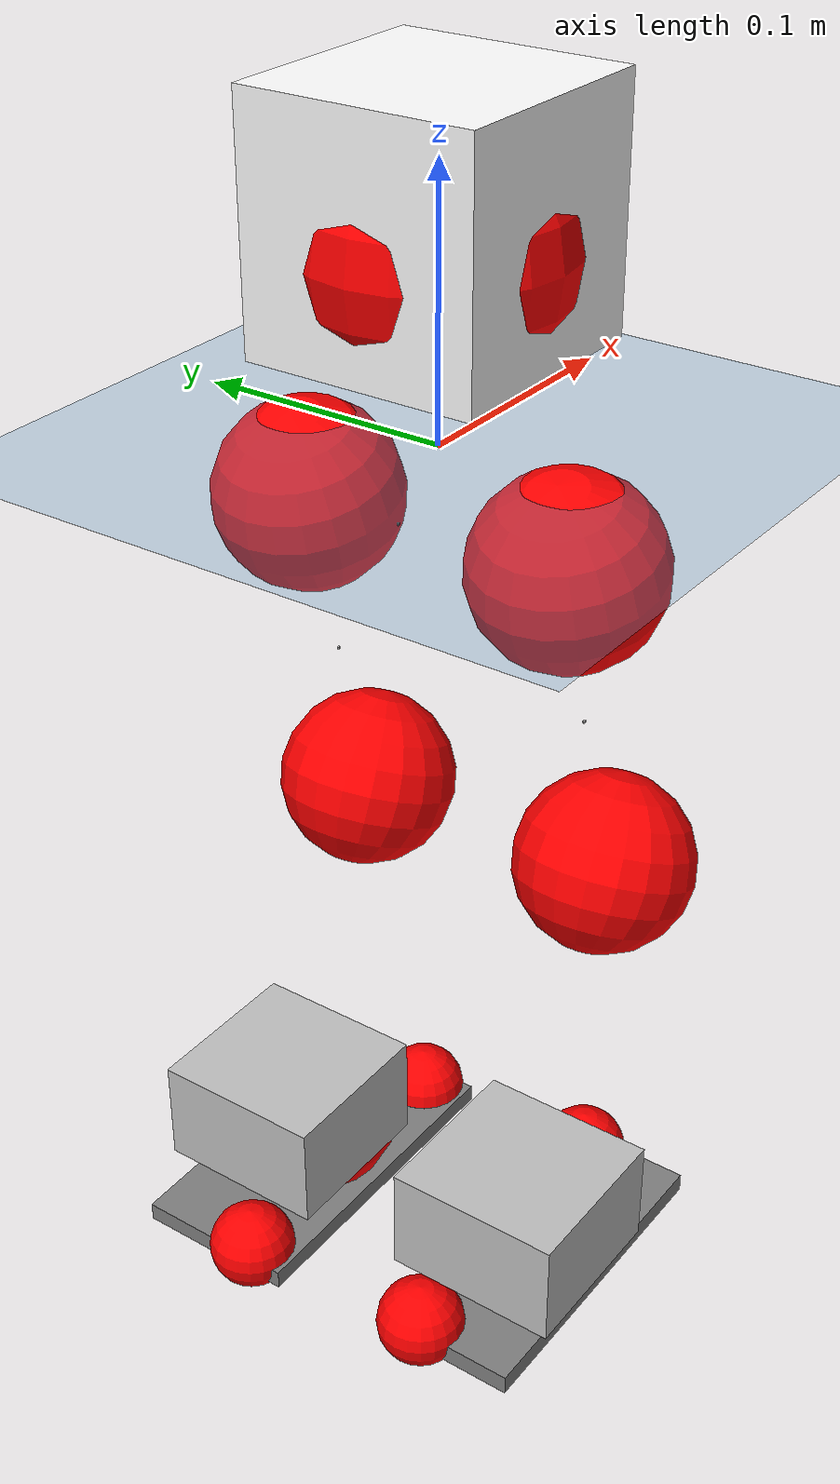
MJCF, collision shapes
<mujoco model="pi_12dof_release_v1">
  <compiler angle="radian" assetdir="assets" balanceinertia="true" inertiafromgeom="false"/>

  <option timestep="0.005" density="1.2" viscosity="2e-05"/>

  <size nkey="1"/>

  <visual>
    <quality shadowsize="8192"/>
    <map shadowclip="0.5"/>
  </visual>

  <default>
    <default class="/">
      <joint armature="0.01" damping="0.01" frictionloss="0.01"/>
      <geom contype="0" conaffinity="0" group="1" solref="-1000 -80"/>
      <site size="0.01 0.005 0.005" group="5"/>
      <general forcelimited="true" biastype="affine" gainprm="20" biasprm="0 -20 -0.5"/>
      <default class="foot">
        <geom size="0.0845 0.036 0.005" type="box" condim="6" group="4" priority="1" friction="0.9 0.2 0.2" solimp="0.015 1 0.005"/>
      </default>
      <default class="reward_collision_sphere">
        <geom group="5" rgba="1 0 0 1"/>
      </default>
    </default>
  </default>

  <asset>
    <texture type="skybox" colorspace="auto" name="//unnamed_texture_0" builtin="gradient" rgb1="0.95 0.95 0.95" rgb2="0.95 0.95 0.95" width="100" height="600"/>
    <texture type="2d" colorspace="auto" name="texplane" builtin="checker" rgb1="0.345 0.575 0.748" rgb2="0.345 0.575 0.748" markrgb="1 1 1" width="512" height="512"/>
    <material name="MatPlane" class="/" texture="texplane" texuniform="true" texrepeat="2 2" specular="0.9"/>
    <mesh name="baselink_1" class="/" file="baselink_1.STL"/>
    <mesh name="r_hip_pitch_link" class="/" file="r_hip_pitch_link.STL"/>
    <mesh name="r_hip_roll_link" class="/" file="r_hip_roll_link.STL"/>
    <mesh name="r_thigh_link" class="/" file="r_thigh_link.STL"/>
    <mesh name="r_calf_link" class="/" file="r_calf_link.STL"/>
    <mesh name="r_ankle_pitch_link" class="/" file="r_ankle_pitch_link.STL"/>
    <mesh name="r_ankle_roll_link" class="/" file="r_ankle_roll_link.STL"/>
    <mesh name="l_hip_pitch_link" class="/" file="l_hip_pitch_link.STL"/>
    <mesh name="l_hip_roll_link" class="/" file="l_hip_roll_link.STL"/>
    <mesh name="l_thigh_link" class="/" file="l_thigh_link.STL"/>
    <mesh name="l_calf_link" class="/" file="l_calf_link.STL"/>
    <mesh name="l_ankle_pitch_link" class="/" file="l_ankle_pitch_link.STL"/>
    <mesh name="l_ankle_roll_link" class="/" file="l_ankle_roll_link.STL"/>
  </asset>

  <worldbody>
    <geom name="floor" class="/" size="100 100 0.125" type="plane" group="0" material="MatPlane"/>
    <light name="toplight_shadow" class="/" pos="0 0 5" dir="0.0990148 0.0990148 -0.990148" type="directional" ambient="0.04 0.04 0.04" diffuse="0.55 0.55 0.55" specular="0.12 0.12 0.12"/>
    <light name="toplight_fill" class="/" pos="0 0 5" dir="0.0990148 0.0990148 -0.990148" type="directional" castshadow="false" ambient="0.04 0.04 0.04" diffuse="0.3 0.3 0.3" specular="0.08 0.08 0.08"/>
    <body name="trunk" pos="-0.000972718 0.000519013 -0.00159988" quat="0.999999 0.000371791 -0.00086148 -0.000422651">
      <inertial pos="0.000813158 0.00186063 0.0410441" quat="0.695753 0.0108595 0.0203747 0.71791" mass="1.56848" diaginertia="0.00673231 0.00238493 0.00482682"/>
      <joint name="//unnamed_joint_0" type="free"/>
      <geom name="//unnamed_geom_1" class="/" type="mesh" density="0" rgba="1 1 1 1" mesh="baselink_1"/>
      <geom name="//unnamed_geom_2" class="/" size="0.045247 0.045247 0.045247" pos="0 0 0.0822687" type="box" rgba="1 1 1 1"/>
      <geom name="//unnamed_geom_3" class="reward_collision_sphere" size="0.0497717" pos="0 0 0.0719851"/>
      <site name="imu" class="/" pos="-0.00191533 0.0134468 -0.0137568" size="0.00904941"/>
      <camera name="track" class="/" pos="0 -1.52734 0" quat="0.707107 0.707107 0 0" mode="trackcom"/>
      <camera name="ego_camera" class="/" pos="0.0692093 0 0.185105" quat="-0.5 -0.5 0.5 0.5"/>
      <body name="r_hip_pitch_link" pos="0.00207193 -0.0153343 -0.032318" quat="0.992195 2.05482e-05 -0.124699 -1.57409e-06">
        <inertial pos="-0.00144775 -0.0418967 -0.00188666" quat="-0.0183441 0.707122 -0.0367165 0.7059" mass="0.26615" diaginertia="7.2699e-05 2.44014e-05 9.2132e-05"/>
        <joint name="r_hip_pitch_joint" class="/" pos="0 0 0" axis="-0.000588169 -0.999999 0.000854114" range="-1.75082 1.23923" armature="0.00941123" damping="0.00438713" frictionloss="0.00873953"/>
        <geom name="//unnamed_geom_4" class="/" type="mesh" density="0" rgba="0.75294 0.75294 0.75294 1" mesh="r_hip_pitch_link"/>
        <geom name="//unnamed_geom_5" class="/" size="0.00045247 0.00045247 0.00045247" type="box" rgba="0.75294 0.75294 0.75294 1"/>
        <body name="r_hip_roll_link" pos="-0.00117778 -0.0394815 0.0024187" quat="1 9.5889e-06 2.02959e-05 3.17411e-05">
          <inertial pos="-0.00353505 -0.000468982 -0.062854" quat="0.704822 -0.0818091 -0.0784734 0.700268" mass="0.279372" diaginertia="0.000216158 7.00158e-05 0.000138379"/>
          <joint name="r_hip_roll_joint" class="/" pos="0 0 0" axis="-0.9999 -0.0100164 0.00997402" range="-0.121785 0.487212" armature="0.0084225" damping="0.00975496" frictionloss="0.0102927"/>
          <geom name="//unnamed_geom_6" class="/" type="mesh" density="0" rgba="0.75294 0.75294 0.75294 1" mesh="r_hip_roll_link"/>
          <geom name="//unnamed_geom_7" class="/" size="0.00045247 0.00045247 0.00045247" type="box" rgba="0.75294 0.75294 0.75294 1"/>
          <geom name="//unnamed_geom_8" class="reward_collision_sphere" size="0.0361976"/>
          <body name="r_thigh_link" pos="0.000285032 0.00130985 -0.0714432" quat="1 4.6089e-06 1.11247e-05 5.51704e-07">
            <inertial pos="-0.000690743 -0.00110926 -0.0489387" quat="0.735717 0.677285 -0.000384247 0.00229553" mass="0.0844886" diaginertia="8.17726e-05 2.4385e-05 6.65067e-05"/>
            <joint name="r_thigh_joint" class="/" pos="0 0 0" axis="-0.0019369 -0.00354546 -0.999992" stiffness="0.00841648" range="-0.350159 0.643418" armature="0.00850811" damping="0.0190372" frictionloss="0.00933005"/>
            <geom name="//unnamed_geom_9" class="/" type="mesh" density="0" rgba="0.75294 0.75294 0.75294 1" mesh="r_thigh_link"/>
            <geom name="//unnamed_geom_10" class="/" size="0.00045247 0.00045247 0.00045247" type="box" rgba="0.75294 0.75294 0.75294 1"/>
            <body name="r_calf_link" pos="-0.00235721 -0.0027664 -0.0712195" quat="0.947473 6.97767e-05 0.319835 -0.000412622">
              <inertial pos="-0.00254221 -0.000582275 -0.071008" quat="0.999927 -0.00706381 0.00534836 0.00826421" mass="0.606872" diaginertia="0.00231217 0.000897545 0.000196151"/>
              <joint name="r_calf_joint" class="/" pos="0 0 0" axis="-0.00166584 -0.999991 0.004" range="-1.65941 0.698206" armature="0.009118" damping="0.00667683" frictionloss="0.00857585"/>
              <geom name="//unnamed_geom_11" class="/" type="mesh" density="0" rgba="0.75294 0.75294 0.75294 1" mesh="r_calf_link"/>
              <geom name="//unnamed_geom_12" class="/" size="0.00045247 0.00045247 0.00045247" type="box" rgba="0.75294 0.75294 0.75294 1"/>
              <geom name="//unnamed_geom_13" class="reward_collision_sphere" size="0.0361976"/>
              <body name="r_ankle_pitch_link" pos="0.00132182 -0.00116631 -0.147223" quat="0.979992 0.000789472 -0.199034 0.000709114">
                <inertial pos="0.00213965 0.0032702 -0.00157138" quat="0.00176215 0.704815 -0.00194363 0.709386" mass="0.135436" diaginertia="0.000205484 5.59013e-05 0.000141878"/>
                <joint name="r_ankle_pitch_joint" class="/" pos="0 0 0" axis="-0.0128372 -0.999914 -0.00268561" range="-1.34977 0.495526" armature="0.00833993" damping="0.0145168" frictionloss="0.00872028"/>
                <geom name="//unnamed_geom_14" class="/" type="mesh" density="0" rgba="0.75294 0.75294 0.75294 1" mesh="r_ankle_pitch_link"/>
                <geom name="//unnamed_geom_15" class="/" size="0.0352927 0.0361976 0.0226235" type="box" rgba="0.75294 0.75294 0.75294 1"/>
                <body name="r_ankle_roll_link" pos="0.0690599 0.0034042 0.000567271" quat="1 -7.04299e-05 -4.55135e-05 -1.44501e-06">
                  <inertial pos="-0.0229309 -0.00206988 -0.0123502" quat="0.561666 0.430257 0.437998 0.554588" mass="0.377422" diaginertia="0.000744987 0.000268556 0.000305982"/>
                  <joint name="r_ankle_roll_joint" class="/" pos="0 0 0" axis="-0.999992 0.00391086 -0.000967566" stiffness="0.00406475" range="-0.173268 0.206003" armature="0.0079726" damping="0" frictionloss="0.00814114"/>
                  <geom name="//unnamed_geom_16" class="/" type="mesh" density="0" rgba="0.75294 0.75294 0.75294 1" mesh="r_ankle_roll_link"/>
                  <geom name="//unnamed_geom_17" class="/" type="mesh" rgba="0.75294 0.75294 0.75294 1" mesh="r_ankle_roll_link"/>
                  <geom name="right_foot" class="foot" size="0.0693384 0.0292656 0.00420035" pos="-0.0470624 0 -0.0452478"/>
                  <geom name="//unnamed_geom_19" class="reward_collision_sphere" size="0.0361976" pos="-0.0461396 0 -0.0205672"/>
                  <geom name="//unnamed_geom_20" class="reward_collision_sphere" size="0.0180988" pos="0.0138419 0.0152734 -0.0411343"/>
                  <geom name="//unnamed_geom_21" class="reward_collision_sphere" size="0.0180988" pos="-0.110735 0.0152734 -0.0411343"/>
                  <site name="right_foot" class="foot" pos="-0.0470624 0 -0.0452478" size="0.00904941"/>
                </body>
              </body>
            </body>
          </body>
        </body>
      </body>
      <body name="l_hip_pitch_link" pos="-0.00140693 0.0150748 -0.0314712" quat="0.992238 -0.000269278 -0.124352 -1.99758e-05">
        <inertial pos="-0.00106669 0.0389658 -0.00130898" quat="-0.0467004 0.706128 0.0321584 0.70581" mass="0.282769" diaginertia="8.06071e-05 2.6974e-05 0.000108076"/>
        <joint name="l_hip_pitch_joint" class="/" pos="0 0 0" axis="-0.00135012 0.999911 0.0132488" range="-1.28041 1.70394" armature="0.00906992" damping="0" frictionloss="0.010187"/>
        <geom name="//unnamed_geom_22" class="/" type="mesh" density="0" rgba="0.75294 0.75294 0.75294 1" mesh="l_hip_pitch_link"/>
        <geom name="//unnamed_geom_23" class="/" size="0.00045247 0.00045247 0.00045247" type="box" rgba="0.75294 0.75294 0.75294 1"/>
        <body name="l_hip_roll_link" pos="0.000190615 0.0402689 0.00137833" quat="0.999999 0.00119566 -0.000528142 -0.000240868">
          <inertial pos="-0.000348763 -0.0028719 -0.0640091" quat="0.699216 -0.0753885 -0.0777661 0.706659" mass="0.29378" diaginertia="0.000231339 7.21711e-05 0.000154825"/>
          <joint name="l_hip_roll_joint" class="/" pos="0 0 0" axis="-0.999998 0.000118578 0.00214882" stiffness="0.00132326" range="-0.503308 0.0603635" armature="0.00789603" damping="0.0183321" frictionloss="0.00901567"/>
          <geom name="//unnamed_geom_24" class="/" type="mesh" density="0" rgba="0.75294 0.75294 0.75294 1" mesh="l_hip_roll_link"/>
          <geom name="//unnamed_geom_25" class="/" size="0.00045247 0.00045247 0.00045247" type="box" rgba="0.75294 0.75294 0.75294 1"/>
          <geom name="//unnamed_geom_26" class="reward_collision_sphere" size="0.0361976"/>
          <body name="l_thigh_link" pos="-0.00313492 -0.000376188 -0.0728683" quat="0.999999 -0.000608599 -0.00119038 2.81989e-06">
            <inertial pos="-0.00129814 0.00118127 -0.05044" quat="0.683511 0.729939 -0.0011639 -0.000988684" mass="0.0798516" diaginertia="8.04834e-05 2.29893e-05 6.58358e-05"/>
            <joint name="l_thigh_joint" class="/" pos="0 0 0" axis="0.00159988 0.000705453 -0.999998" stiffness="0.00224987" range="-0.589778 0.318659" armature="0.00887298" damping="0" frictionloss="0.00968403"/>
            <geom name="//unnamed_geom_27" class="/" type="mesh" density="0" rgba="0.75294 0.75294 0.75294 1" mesh="l_thigh_link"/>
            <geom name="//unnamed_geom_28" class="/" size="0.00045247 0.00045247 0.00045247" type="box" rgba="0.75294 0.75294 0.75294 1"/>
            <body name="l_calf_link" pos="-0.000114245 -0.000162743 -0.0703861" quat="0.947771 0.000148601 0.318951 -0.000149577">
              <inertial pos="-0.00256767 -0.000686664 -0.0709057" quat="0.999899 -0.00231855 0.00125846 0.01397" mass="0.607821" diaginertia="0.00246115 0.000927093 0.000211193"/>
              <joint name="l_calf_joint" class="/" pos="0 0 0" axis="-0.0148467 0.99989 0.000696215" range="-0.698963 1.6949" armature="0.00920007" damping="0" frictionloss="0.0103214"/>
              <geom name="//unnamed_geom_29" class="/" type="mesh" density="0" rgba="0.75294 0.75294 0.75294 1" mesh="l_calf_link"/>
              <geom name="//unnamed_geom_30" class="/" size="0.00045247 0.00045247 0.00045247" type="box" rgba="0.75294 0.75294 0.75294 1"/>
              <geom name="//unnamed_geom_31" class="reward_collision_sphere" size="0.0361976"/>
              <body name="l_ankle_pitch_link" pos="-1.92933e-05 0.00220946 -0.146364" quat="0.980095 -0.000378721 -0.198527 -0.000178251">
                <inertial pos="0.00687341 -0.00361348 -0.00225678" quat="-0.00446411 0.702513 0.0146212 0.711506" mass="0.126708" diaginertia="0.000209726 5.65826e-05 0.000136313"/>
                <joint name="l_ankle_pitch_joint" class="/" pos="0 0 0" axis="-0.00156971 0.999998 -0.0013044" stiffness="0.0108792" range="-0.564322 1.2785" armature="0.00803014" damping="0.00462118" frictionloss="0.00781367"/>
                <geom name="//unnamed_geom_32" class="/" type="mesh" density="0" rgba="0.75294 0.75294 0.75294 1" mesh="l_ankle_pitch_link"/>
                <geom name="//unnamed_geom_33" class="/" size="0.0352927 0.0361976 0.0226235" type="box" rgba="0.75294 0.75294 0.75294 1"/>
                <body name="l_ankle_roll_link" pos="0.0676959 0.00318616 -0.0022738" quat="1 -0.000405135 0.00022592 0.000159513">
                  <inertial pos="-0.0218494 -0.000285625 -0.0147721" quat="0.556007 0.423634 0.438374 0.564994" mass="0.399283" diaginertia="0.000789948 0.000285751 0.000328398"/>
                  <joint name="l_ankle_roll_joint" class="/" pos="0 0 0" axis="-1 -0.000165058 7.95337e-05" range="-0.164876 0.131261" armature="0.00868065" damping="0" frictionloss="0.00798768"/>
                  <geom name="//unnamed_geom_34" class="/" type="mesh" density="0" rgba="0.75294 0.75294 0.75294 1" mesh="l_ankle_roll_link"/>
                  <geom name="//unnamed_geom_35" class="/" type="mesh" rgba="0.75294 0.75294 0.75294 1" mesh="l_ankle_roll_link"/>
                  <geom name="left_foot" class="foot" size="0.071116 0.0348027 0.00398517" pos="-0.0470624 0 -0.0452478"/>
                  <geom name="//unnamed_geom_37" class="reward_collision_sphere" size="0.0361976" pos="-0.0461396 0 -0.0205672"/>
                  <geom name="//unnamed_geom_38" class="reward_collision_sphere" size="0.0180988" pos="0.0138419 -0.0152734 -0.0411343"/>
                  <geom name="//unnamed_geom_39" class="reward_collision_sphere" size="0.0180988" pos="-0.110735 -0.0152734 -0.0411343"/>
                  <site name="left_foot" class="foot" pos="-0.0470624 0 -0.0452478" size="0.00904941"/>
                </body>
              </body>
            </body>
          </body>
        </body>
      </body>
    </body>
  </worldbody>

  <contact>
    <pair class="/" geom1="floor" geom2="right_foot" name="//unnamed_contact_1"/>
    <pair class="/" geom1="floor" geom2="left_foot" name="//unnamed_contact_0"/>
  </contact>

  <actuator>
    <general name="r_hip_pitch_joint" class="/" joint="r_hip_pitch_joint" forcerange="-20.7967 20.7967" gainprm="17.6737" biasprm="0 -17.6737 -0.428411"/>
    <general name="r_hip_roll_joint" class="/" joint="r_hip_roll_joint" forcerange="-18.1064 18.1064" gainprm="17.6737" biasprm="0 -17.6737 -0.428411"/>
    <general name="r_thigh_joint" class="/" joint="r_thigh_joint" forcerange="-18.6678 18.6678" gainprm="17.6737" biasprm="0 -17.6737 -0.428411"/>
    <general name="r_calf_joint" class="/" joint="r_calf_joint" forcerange="-19.7243 19.7243" gainprm="17.6737" biasprm="0 -17.6737 -0.428411"/>
    <general name="r_ankle_pitch_joint" class="/" joint="r_ankle_pitch_joint" forcerange="-17.4954 17.4954" gainprm="17.6737" biasprm="0 -17.6737 -0.428411"/>
    <general name="r_ankle_roll_joint" class="/" joint="r_ankle_roll_joint" forcerange="-18.0302 18.0302" gainprm="17.6737" biasprm="0 -17.6737 -0.428411"/>
    <general name="l_hip_pitch_joint" class="/" joint="l_hip_pitch_joint" forcerange="-18.7189 18.7189" gainprm="17.6737" biasprm="0 -17.6737 -0.428411"/>
    <general name="l_hip_roll_joint" class="/" joint="l_hip_roll_joint" forcerange="-18.6786 18.6786" gainprm="17.6737" biasprm="0 -17.6737 -0.428411"/>
    <general name="l_thigh_joint" class="/" joint="l_thigh_joint" forcerange="-20.8778 20.8778" gainprm="17.6737" biasprm="0 -17.6737 -0.428411"/>
    <general name="l_calf_joint" class="/" joint="l_calf_joint" forcerange="-19.4876 19.4876" gainprm="17.6737" biasprm="0 -17.6737 -0.428411"/>
    <general name="l_ankle_pitch_joint" class="/" joint="l_ankle_pitch_joint" forcerange="-20.7883 20.7883" gainprm="17.6737" biasprm="0 -17.6737 -0.428411"/>
    <general name="l_ankle_roll_joint" class="/" joint="l_ankle_roll_joint" forcerange="-18.6591 18.6591" gainprm="17.6737" biasprm="0 -17.6737 -0.428411"/>
  </actuator>

  <sensor>
    <gyro site="imu" name="imu_angular_velocity"/>
    <velocimeter site="imu" name="imu_linear_velocity"/>
    <framelinvel objtype="site" objname="left_foot" name="left_foot_global_linear_velocity"/>
    <framelinvel objtype="site" objname="right_foot" name="right_foot_global_linear_velocity"/>
  </sensor>

  <keyframe>
    <key name="home" qpos="0 0 0.291 1 0 0 0 0.4 0 0 -0.8 0.4 0 -0.4 0 0 0.8 -0.4 0"/>
  </keyframe>
</mujoco>
